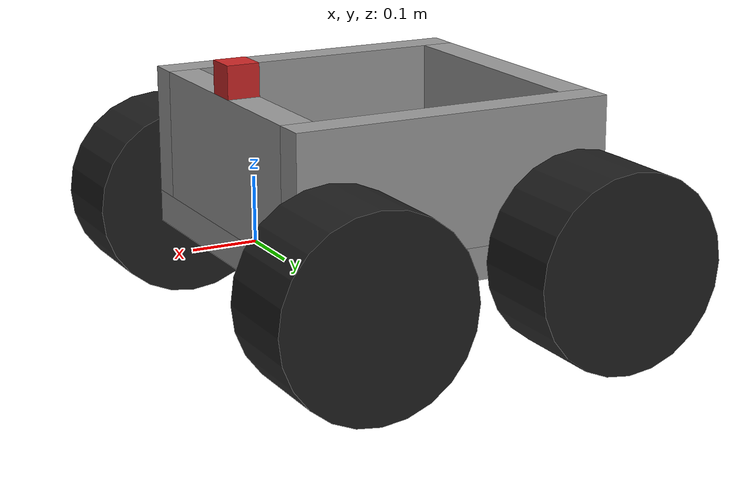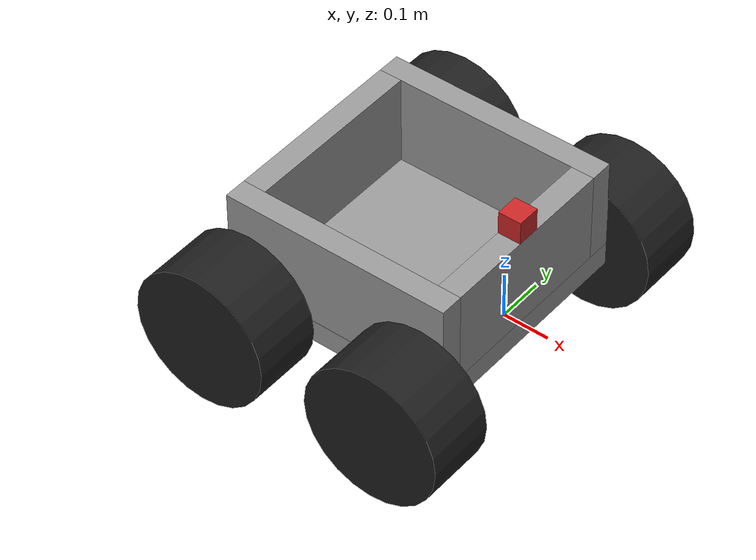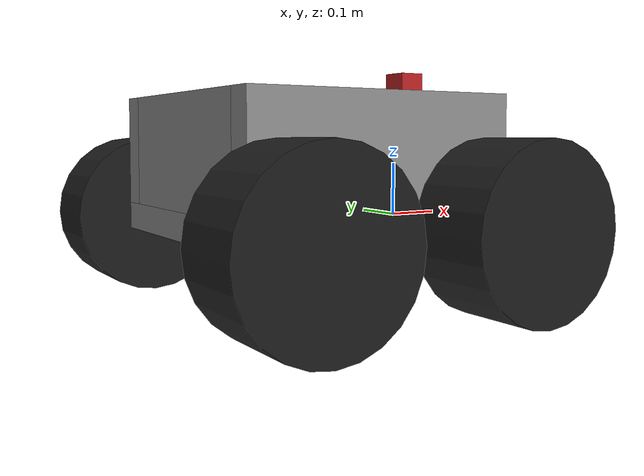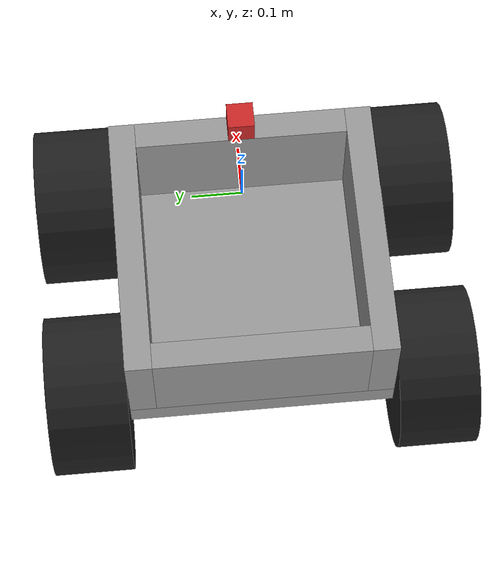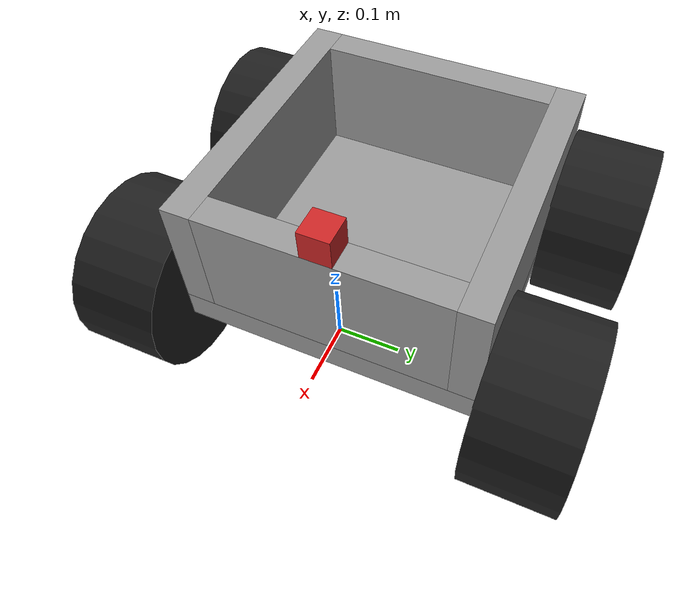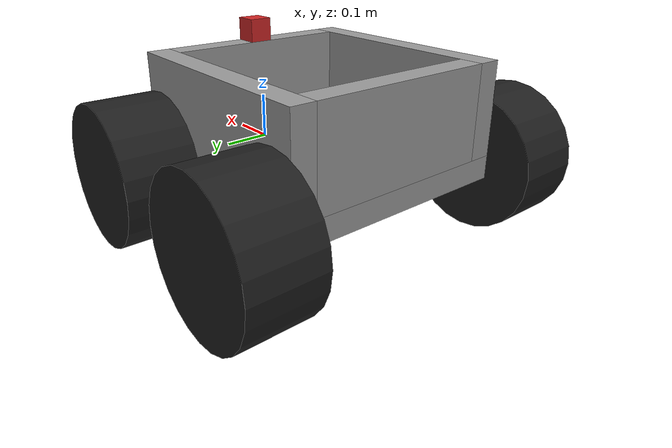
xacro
<?xml version="1.0"?>
<robot name="mainbot" xmlns:xacro="http://ros.org/wiki/xacro">

	<xacro:include filename="$(find project)/urdf/common_properties.xacro"/>
	<xacro:include filename="$(find project)/urdf/mainbot.gazebo.xacro"/>

	<xacro:macro name="visual1" params="length radius color">
                <visual>
                        <geometry>
                                <cylinder length="${length}" radius="${radius}"/>
                        </geometry>
                        <material name="${color}"/>
                </visual>
                <collision>
                        <geometry>
                                <cylinder length="${length}" radius="${radius}"/>
                        </geometry>
                </collision>
        </xacro:macro>

        <xacro:macro name="visual2" params="length width height color">
                <visual>
                        <geometry>
                                <box size="${length} ${width} ${height}"/>
                        </geometry>
                        <material name="${color}"/>
                </visual>
                <collision>
                        <geometry>
                                <box size="${length} ${width} ${height}"/>
                        </geometry>
                </collision>
        </xacro:macro>

        <xacro:macro name="inertial_" params="mass">
                <inertial>
                        <mass value="${mass}"/>
                        <inertia ixx="1.0" ixy="0.0" ixz="0.0" iyy="1.0" iyz="0.0" izz="1.0" />
                </inertial>
        </xacro:macro>

	<link name="base_footprint"/>
	<joint name="fixed" type="fixed">
		<parent link="base_footprint"/>
		<child link="link2"/>
		<origin xyz="0 0 0" rpy="${pi/2} 0 ${pi}"/>
	</joint>

	<link name="link2">
		<xacro:visual1 length="0.5" radius="0.01" color="black"/>
		<inertial>
			<mass value="2.8498940e-02"/>
			<inertia ixx="1.1175589e-05" ixy="-4.2369783e-11" ixz="-5.9381719e-09"
				 iyy="1.1192413e-05" iyz="-1.4400107e-11"
				 izz="2.0712558e-05"/>
		</inertial>

	</link>

	<link name="link1">
		<xacro:visual2 length="0.5" width="0.5" height="0.05" color="grey"/>
		<inertial>
			<mass value="10"/>
			<inertia ixx="0.02104167" ixy="0" ixz="0"
				 iyy="0.02104167" iyz="0"
				 izz="0.04166667"/>
		</inertial>
	</link>

	<joint name="link1_joint" type="fixed">
		<parent link="link2"/>
                <child link="link1"/>
		<origin xyz="0.2 0 0" rpy="${-pi/2} 0 0"/>
	</joint>

	<link name="right_wall">
		<xacro:visual2 length="0.05" width="0.4" height="0.2" color="grey"/>
		<inertial>
			<mass value="10"/>
			<inertia ixx="0.02104167" ixy="0" ixz="0"
				 iyy="0.03416667" iyz="0"
				 izz="0.01354167"/>
		</inertial>
	</link>

	<joint name="right_wall_joint" type="fixed">
		<parent link="link1"/>
		<child link="right_wall"/>
		<origin xyz="0.225 0 0.125"/>
	</joint>

	<link name="left_wall">
		<xacro:visual2 length="0.05" width="0.4" height="0.2" color="grey"/>
		<inertial>
			<mass value="10"/>
			<inertia ixx="0.02104167" ixy="0" ixz="0"
				 iyy="0.03416667" iyz="0"
				 izz="0.01354167"/>
		</inertial>
	</link>

	<joint name="left_wall_joint" type="fixed">
		<parent link="link1"/>
		<child link="left_wall"/>
		<origin xyz="-0.225 0 0.125"/>
	</joint>

	<link name="front_wall">
		<xacro:visual2 length="0.5" width="0.05" height="0.2" color="grey"/>
		<inertial>
			<mass value="10"/>
			<inertia ixx="0.04166667" ixy="0" ixz="0"
				 iyy="0.02104167" iyz="0"
				 izz="0.02104167"/>
		</inertial>
	</link>

	<joint name="front_wall_joint" type="fixed">
		<parent link="link1"/>
		<child link="front_wall"/>
		<origin xyz="0 0.225 0.125"/>
	</joint>

	<link name="back_wall">
		<xacro:visual2 length="0.5" width="0.05" height="0.2" color="grey"/>
		<inertial>
			<mass value="10"/>
			<inertia ixx="0.04166667" ixy="0" ixz="0"
				 iyy="0.02104167" iyz="0"
				 izz="0.02104167"/>
		</inertial>
	</link>

	<joint name="back_wall_joint" type="fixed">
		<parent link="link1"/>
		<child link="back_wall"/>
		<origin xyz="0 -0.225 0.125"/>
	</joint>

	<link name="back_right_wheel">
		<xacro:visual1 length="0.15" radius="0.15" color="black"/>
		<inertial>
			<mass value="2.8498940e-02"/>
			<inertia ixx="1.1175589e-05" ixy="-4.2369783e-11" ixz="-5.9381719e-09"
				 iyy="1.1192413e-05" iyz="-1.4400107e-11"
				 izz="2.0712558e-05"/>
		</inertial>

	</link>

	<joint name="back_right_wheel_joint" type="continuous">
		<parent link="link1"/>
                <child link="back_right_wheel"/>
		<origin xyz="0.2 0.325 0" rpy="${pi/2} 0 0"/>
                <axis xyz="0 0 1"/>
	</joint>

	<link name="back_left_wheel">
		<xacro:visual1 length="0.15" radius="0.15" color="black"/>
		<inertial>
			<mass value="2.8498940e-02"/>
			<inertia ixx="1.1175589e-05" ixy="-4.2369783e-11" ixz="-5.9381719e-09"
				 iyy="1.1192413e-05" iyz="-1.4400107e-11"
				 izz="2.0712558e-05"/>
		</inertial>
	</link>

	<joint name="back_left_wheel_joint" type="continuous">
		<parent link="link1"/>
                <child link="back_left_wheel"/>
		<origin xyz="0.2 -0.325 0" rpy="${pi/2} 0 0"/>
		<axis xyz="0 0 1"/>
	</joint>

	<link name="front_right_wheel">
		<xacro:visual1 length="0.15" radius="0.15" color="black"/>
		<inertial>
			<mass value="2.8498940e-02"/>
			<inertia ixx="1.1175589e-05" ixy="-4.2369783e-11" ixz="-5.9381719e-09"
				 iyy="1.1192413e-05" iyz="-1.4400107e-11"
				 izz="2.0712558e-05"/>
		</inertial>
	</link>

	<joint name="front_right_wheel_joint" type="continuous">
		<parent link="link2"/>
                <child link="front_right_wheel"/>
		<origin xyz="0 0 0.325" rpy="0 0 0"/>
                <axis xyz="0 0 1"/>
	</joint>

	<link name="front_left_wheel">
		<xacro:visual1 length="0.15" radius="0.15" color="black"/>
		<inertial>
			<mass value="2.8498940e-02"/>
			<inertia ixx="1.1175589e-05" ixy="-4.2369783e-11" ixz="-5.9381719e-09"
				 iyy="1.1192413e-05" iyz="-1.4400107e-11"
				 izz="2.0712558e-05"/>
		</inertial>
	</link>

	<joint name="front_left_wheel_joint" type="continuous">
		<parent link="link2"/>
                <child link="front_left_wheel"/>
		<origin xyz="0 0 -0.325" rpy="0 0 0"/>
                <axis xyz="0 0 1"/>
	</joint>

	<link name="laser_scan">
		<xacro:visual2 length="0.05" width="0.05" height="0.05" color="red"/>
		<inertial>
			<mass value="0.01"/>
			<inertia ixx="0.00000416667" ixy="0" ixz="0"
				 iyy="0.00000416667" iyz="0"
				 izz="0.00000416667"/>
		</inertial>
	</link>

	<joint name="laser_joint" type="fixed">
		<parent link="left_wall"/>
		<child link="laser_scan"/>
		<origin xyz="0 0 0.125"/>
	</joint>

	<link name="imu_link"/>

	<joint name="imu_joint" type="fixed">
		<parent link="link1"/>
		<child link="imu_link"/>
		<origin xyz="0 0 0.025" rpy="0 0 0"/>
	</joint>

</robot>
